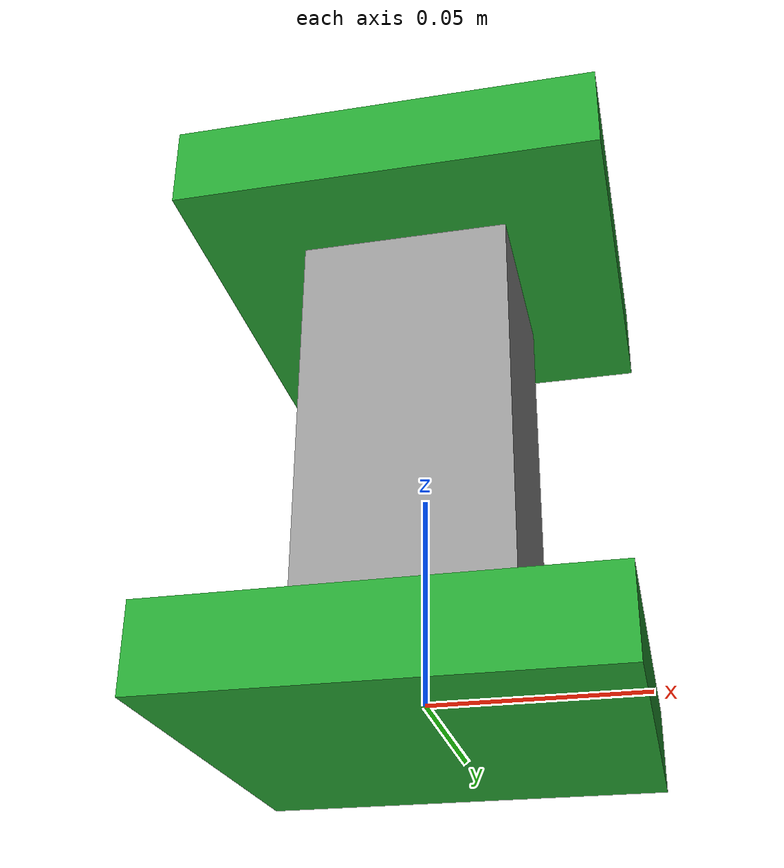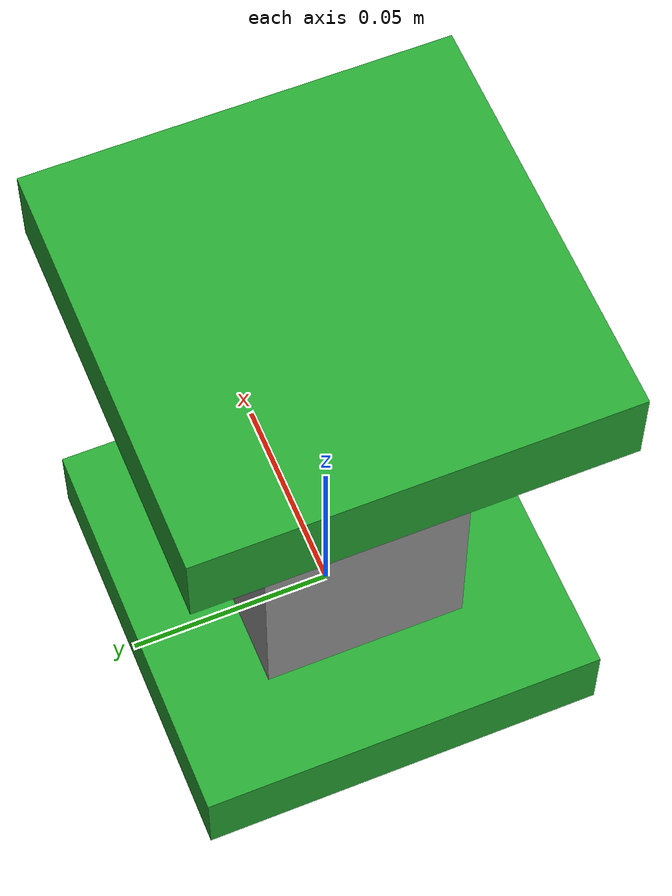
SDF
<?xml version='1.0'?>
<sdf version='1.7'>
  <model name='grip_object'>
    <plugin filename="libgazebo_ros_ft_sensor.so"
    name="gazebo_ros_ft_sensor_plugin">
     	<alwaysOn>true</alwaysOn>
	<updateRate>100.0</updateRate>
	<jointName>link_JOINT_0</jointName>
	<topicName>ft_sensor_object</topicName>
    </plugin>
    <link name='link'>
     <provide_feedback>true</provide_feedback>
      <inertial>
        <mass>0.1</mass>
        <inertia>
          <ixx>0.0003</ixx>
          <ixy>0</ixy>
          <ixz>0</ixz>
          <iyy>0.0003</iyy>
          <iyz>0</iyz>
          <izz>0.0004</izz>
        </inertia>
        <pose>0 0 0 0 -0 0</pose>
      </inertial>
      <self_collide>0</self_collide>
      <enable_wind>0</enable_wind>
      <kinematic>0</kinematic>
      <pose>0 0 0 0 -0 0</pose>
      <gravity>1</gravity>
      <visual name='visual'>
        <geometry>
          <box>
            <size>0.1 0.1 0.02</size>
          </box>
        </geometry>
        <material>
          <script>
            <name>Gazebo/Green</name>
            <uri>file://media/materials/scripts/gazebo.material</uri>
          </script>
          <shader type='pixel'>
            <normal_map>__default__</normal_map>
          </shader>
          <ambient>0.3 0.3 0.3 1</ambient>
          <diffuse>0.7 0.7 0.7 1</diffuse>
          <specular>0.01 0.01 0.01 1</specular>
          <emissive>0 0 0 1</emissive>
        </material>
        <pose>0 0 0 0 -0 0</pose>
        <transparency>0</transparency>
        <cast_shadows>1</cast_shadows>
      </visual>
      <collision name='collision'>
        <laser_retro>0</laser_retro>
        <max_contacts>10</max_contacts>
        <pose>0 0 0 0 -0 0</pose>
        <geometry>
          <box>
            <size>0.1 0.1 0.02</size>
          </box>
        </geometry>
        <surface>
          <friction>
            <ode>
              <mu>0.7</mu>
              <mu2>0.7</mu2>
              <fdir1>0 0 0</fdir1>
              <slip1>0</slip1>
              <slip2>0</slip2>
            </ode>
            <torsional>
              <coefficient>1</coefficient>
              <patch_radius>0</patch_radius>
              <surface_radius>0</surface_radius>
              <use_patch_radius>1</use_patch_radius>
              <ode>
                <slip>0</slip>
              </ode>
            </torsional>
          </friction>
          <bounce>
            <restitution_coefficient>0</restitution_coefficient>
            <threshold>1e+06</threshold>
          </bounce>
          <contact>
            <collide_without_contact>0</collide_without_contact>
            <collide_without_contact_bitmask>1</collide_without_contact_bitmask>
            <collide_bitmask>1</collide_bitmask>
            <ode>
              <soft_cfm>0</soft_cfm>
              <soft_erp>0.2</soft_erp>
              <kp>1e+10</kp>
              <kd>0.1</kd>
              <max_vel>0.01</max_vel>
              <min_depth>0.000001</min_depth>
            </ode>
            <bullet>
              <split_impulse>1</split_impulse>
              <split_impulse_penetration_threshold>-0.01</split_impulse_penetration_threshold>
              <soft_cfm>0</soft_cfm>
              <soft_erp>0.2</soft_erp>
              <kp>1e+10</kp>
              <kd>0.1</kd>
            </bullet>
          </contact>
        </surface>
      </collision>
      <sensor name="ft_sensor" type="ft">
                    <always_on>1</always_on>
                    <update_rate>1</update_rate>
                    <visualize>true</visualize>
                    <topic>ft_object</topic>
    </sensor>
    </link>
    <link name='link_0'>
      <inertial>
        <mass>0.1</mass>
        <inertia>
          <ixx>0.0003</ixx>
          <ixy>0</ixy>
          <ixz>0</ixz>
          <iyy>0.0003</iyy>
          <iyz>0</iyz>
          <izz>0.0004</izz>
        </inertia>
        <pose>0 0 0 0 -0 0</pose>
      </inertial>
      <pose>0 -0 0.06 0 -0 0</pose>
      <gravity>1</gravity>
      <self_collide>0</self_collide>
      <kinematic>0</kinematic>
      <enable_wind>0</enable_wind>
      <visual name='visual'>
        <pose>0 0 0 0 -0 0</pose>
        <geometry>
          <box>
            <size>0.05 0.05 0.1</size>
          </box>
        </geometry>
        <material>
          <lighting>1</lighting>
          <script>
            <uri>file://media/materials/scripts/gazebo.material</uri>
            <name>Gazebo/Grey</name>
          </script>
          <shader type='pixel'>
            <normal_map>__default__</normal_map>
          </shader>
          <ambient>0.3 0.3 0.3 1</ambient>
          <diffuse>0.7 0.7 0.7 1</diffuse>
          <specular>0.01 0.01 0.01 1</specular>
          <emissive>0 0 0 1</emissive>
        </material>
        <transparency>0</transparency>
        <cast_shadows>1</cast_shadows>
      </visual>
      <collision name='collision'>
        <laser_retro>0</laser_retro>
        <max_contacts>10</max_contacts>
        <pose>0 0 0 0 -0 0</pose>
        <geometry>
          <box>
            <size>0.05 0.05 0.1</size>
          </box>
        </geometry>
        <surface>
          <friction>
            <ode>
              <mu>1</mu>
              <mu2>1</mu2>
              <fdir1>0 0 0</fdir1>
              <slip1>0</slip1>
              <slip2>0</slip2>
            </ode>
            <torsional>
              <coefficient>1</coefficient>
              <patch_radius>0</patch_radius>
              <surface_radius>0</surface_radius>
              <use_patch_radius>1</use_patch_radius>
              <ode>
                <slip>0</slip>
              </ode>
            </torsional>
          </friction>
          <bounce>
            <restitution_coefficient>0</restitution_coefficient>
            <threshold>1e+06</threshold>
          </bounce>
          <contact>
            <collide_without_contact>0</collide_without_contact>
            <collide_without_contact_bitmask>1</collide_without_contact_bitmask>
            <collide_bitmask>1</collide_bitmask>
            <ode>
              <soft_cfm>0</soft_cfm>
              <soft_erp>0.2</soft_erp>
              <kp>1e+8</kp>
              <kd>20</kd>
              <max_vel>0.01</max_vel>
              <min_depth>0.0005</min_depth>
            </ode>
            <bullet>
              <split_impulse>1</split_impulse>
              <split_impulse_penetration_threshold>-0.01</split_impulse_penetration_threshold>
              <soft_cfm>0</soft_cfm>
              <soft_erp>0.2</soft_erp>
              <kp>1e+10</kp>
              <kd>0.1</kd>
            </bullet>
          </contact>
        </surface>
      </collision>
    </link>
    <link name='link_clone'>
      <inertial>
        <mass>0.1</mass>
        <inertia>
          <ixx>0.0003</ixx>
          <ixy>0</ixy>
          <ixz>0</ixz>
          <iyy>0.0003</iyy>
          <iyz>0</iyz>
          <izz>0.0004</izz>
        </inertia>
        <pose>0 0 0 0 -0 0</pose>
      </inertial>
      <self_collide>0</self_collide>
      <enable_wind>0</enable_wind>
      <kinematic>0</kinematic>
      <pose>0 -0 0.12 0 -0 0</pose>
      <gravity>1</gravity>
      <visual name='visual'>
        <geometry>
          <box>
            <size>0.1 0.1 0.02</size>
          </box>
        </geometry>
        <material>
          <script>
            <name>Gazebo/Green</name>
            <uri>file://media/materials/scripts/gazebo.material</uri>
          </script>
          <shader type='pixel'>
            <normal_map>__default__</normal_map>
          </shader>
          <ambient>0.3 0.3 0.3 1</ambient>
          <diffuse>0.7 0.7 0.7 1</diffuse>
          <specular>0.01 0.01 0.01 1</specular>
          <emissive>0 0 0 1</emissive>
        </material>
        <pose>0 0 0 0 -0 0</pose>
        <transparency>0</transparency>
        <cast_shadows>1</cast_shadows>
      </visual>
      <collision name='collision'>
        <laser_retro>0</laser_retro>
        <max_contacts>10</max_contacts>
        <pose>0 0 0 0 -0 0</pose>
        <geometry>
          <box>
            <size>0.1 0.1 0.02</size>
          </box>
        </geometry>
        <surface>
          <friction>
            <ode>
              <mu>1</mu>
              <mu2>1</mu2>
              <fdir1>0 0 0</fdir1>
              <slip1>0</slip1>
              <slip2>0</slip2>
            </ode>
            <torsional>
              <coefficient>1</coefficient>
              <patch_radius>0</patch_radius>
              <surface_radius>0</surface_radius>
              <use_patch_radius>1</use_patch_radius>
              <ode>
                <slip>0</slip>
              </ode>
            </torsional>
          </friction>
          <bounce>
            <restitution_coefficient>0</restitution_coefficient>
            <threshold>1e+06</threshold>
          </bounce>
          <contact>
            <collide_without_contact>0</collide_without_contact>
            <collide_without_contact_bitmask>1</collide_without_contact_bitmask>
            <collide_bitmask>1</collide_bitmask>
            <ode>
              <soft_cfm>0</soft_cfm>
              <soft_erp>0.2</soft_erp>
              <kp>1e+10</kp>
              <kd>0.1</kd>
              <max_vel>0.01</max_vel>
              <min_depth>0.001</min_depth>
            </ode>
            <bullet>
              <split_impulse>1</split_impulse>
              <split_impulse_penetration_threshold>-0.01</split_impulse_penetration_threshold>
              <soft_cfm>0</soft_cfm>
              <soft_erp>0.2</soft_erp>
              <kp>1e+10</kp>
              <kd>1</kd>
            </bullet>
          </contact>
        </surface>
      </collision>
    </link>
    <joint name='link_0_JOINT_1' type='fixed'>
      <parent>link_0</parent>
      <child>link_clone</child>
      <pose>0 0 0 0 -0 0</pose>
      <physics>
        <ode>
          <limit>
            <cfm>0</cfm>
            <erp>0.2</erp>
          </limit>
          <suspension>
            <cfm>0</cfm>
            <erp>0.2</erp>
          </suspension>
        </ode>
      </physics>
    </joint>
    <joint name='link_JOINT_0' type='fixed'>
      <parent>link</parent>
      <child>link_0</child>
      <pose>0 0 0 0 -0 0</pose>
      <physics>
      <provide_feedback>true</provide_feedback>
        <ode>
          <limit>
            <cfm>0</cfm>
            <erp>0.2</erp>
          </limit>
          <suspension>
            <cfm>0</cfm>
            <erp>0.2</erp>
          </suspension>
        </ode>
      </physics>
    </joint>
    <static>0</static>
    <allow_auto_disable>1</allow_auto_disable>
  </model>
</sdf>
